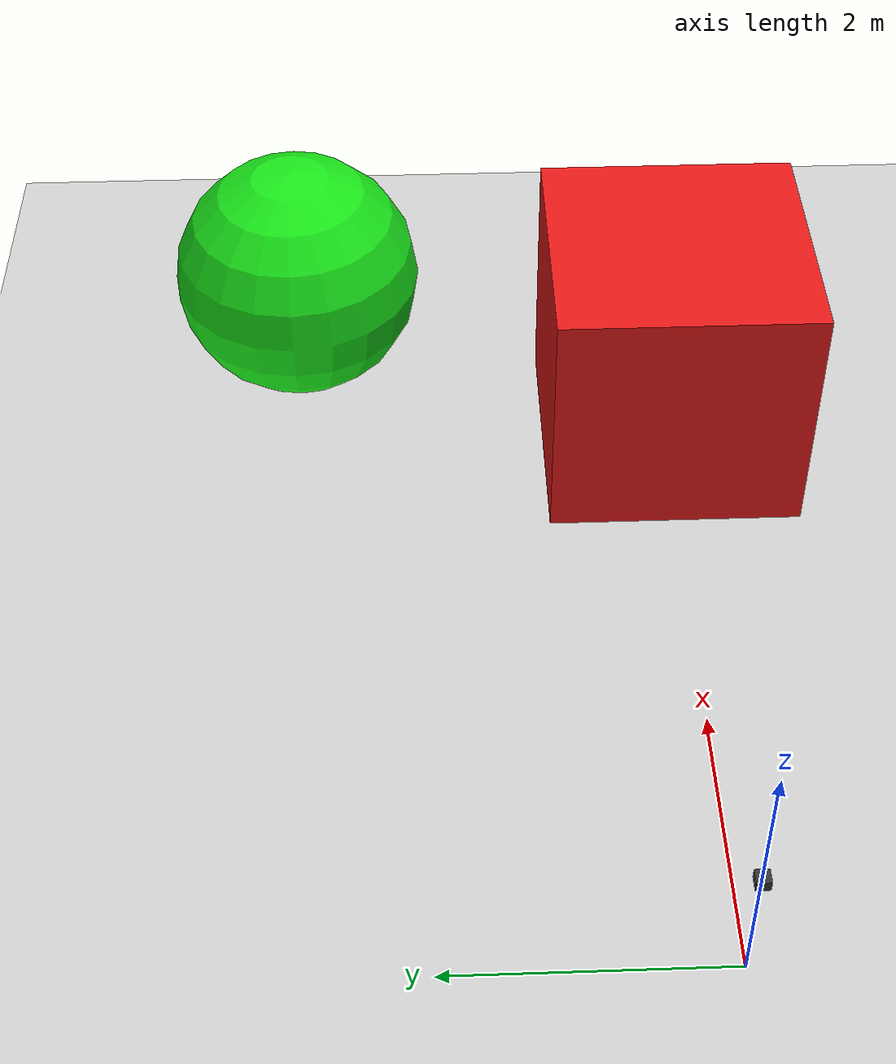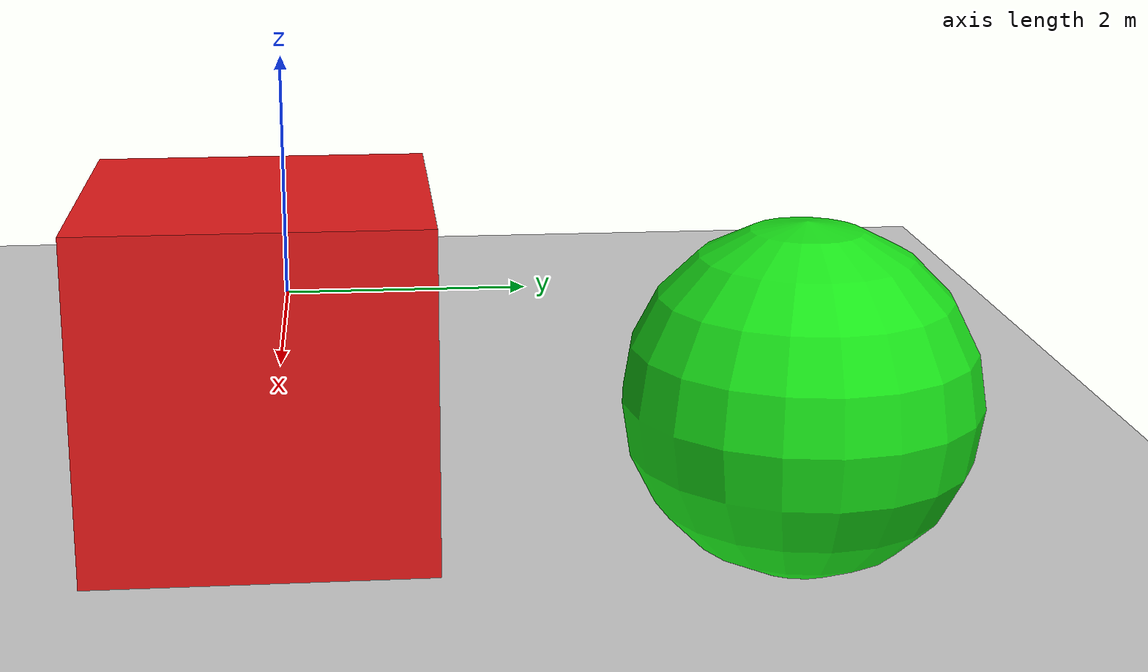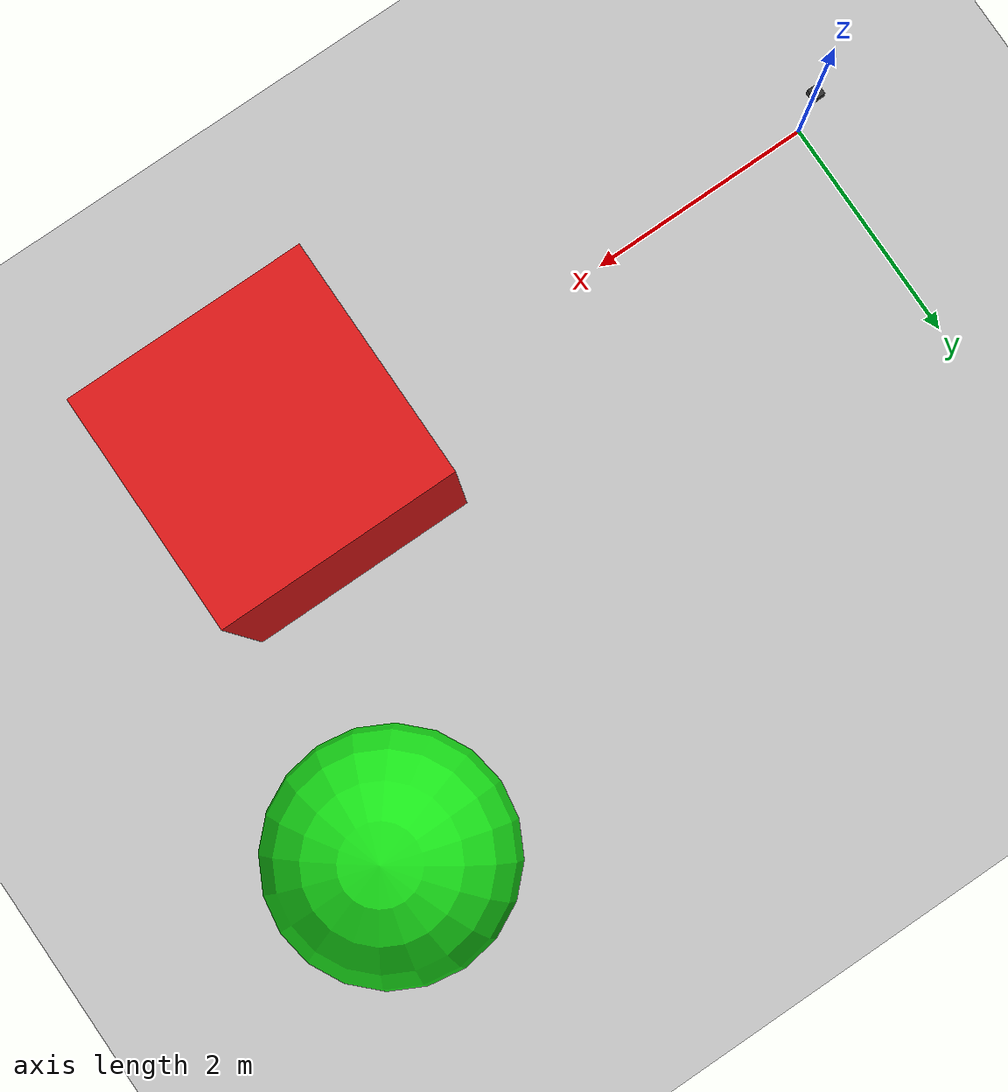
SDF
<?xml version="1.0" ?>
<sdf version="1.9">
  <world name="livox_avia">
    <gui fullscreen="0">

      <!-- 3D scene -->
      <plugin filename="MinimalScene" name="3D View">
        <gz-gui>
          <title>3D View</title>
          <property type="bool" key="showTitleBar">false</property>
          <property type="string" key="state">docked</property>
        </gz-gui>

        <engine>ogre2</engine>
        <scene>scene</scene>
        <ambient_light>0.4 0.4 0.4</ambient_light>
        <background_color>0.8 0.8 0.8</background_color>
        <camera_pose>-8 -6 6 0 0.45 0.6</camera_pose>
      </plugin>

      <!-- Plugins that add functionality to the scene -->
      <plugin filename="EntityContextMenuPlugin" name="Entity context menu">
        <gz-gui>
          <property key="state" type="string">floating</property>
          <property key="width" type="double">5</property>
          <property key="height" type="double">5</property>
          <property key="showTitleBar" type="bool">false</property>
        </gz-gui>
      </plugin>
      <plugin filename="GzSceneManager" name="Scene Manager">
        <gz-gui>
          <property key="resizable" type="bool">false</property>
          <property key="width" type="double">5</property>
          <property key="height" type="double">5</property>
          <property key="state" type="string">floating</property>
          <property key="showTitleBar" type="bool">false</property>
        </gz-gui>
      </plugin>
      <plugin filename="InteractiveViewControl" name="Interactive view control">
        <gz-gui>
          <property key="resizable" type="bool">false</property>
          <property key="width" type="double">5</property>
          <property key="height" type="double">5</property>
          <property key="state" type="string">floating</property>
          <property key="showTitleBar" type="bool">false</property>
        </gz-gui>
      </plugin>
      <plugin filename="CameraTracking" name="Camera Tracking">
        <gz-gui>
          <property key="resizable" type="bool">false</property>
          <property key="width" type="double">5</property>
          <property key="height" type="double">5</property>
          <property key="state" type="string">floating</property>
          <property key="showTitleBar" type="bool">false</property>
        </gz-gui>
      </plugin>
      <!-- World control -->
      <plugin filename="WorldControl" name="World control">
        <gz-gui>
          <title>World control</title>
          <property type="bool" key="showTitleBar">false</property>
          <property type="bool" key="resizable">false</property>
          <property type="double" key="height">72</property>
          <property type="double" key="z">1</property>

          <property type="string" key="state">floating</property>
          <anchors target="3D View">
            <line own="left" target="left"/>
            <line own="bottom" target="bottom"/>
          </anchors>
        </gz-gui>

        <play_pause>true</play_pause>
        <step>true</step>
        <start_paused>true</start_paused>
        <use_event>true</use_event>

      </plugin>

      <!-- World statistics -->
      <plugin filename="WorldStats" name="World stats">
        <gz-gui>
          <title>World stats</title>
          <property type="bool" key="showTitleBar">false</property>
          <property type="bool" key="resizable">false</property>
          <property type="double" key="height">110</property>
          <property type="double" key="width">290</property>
          <property type="double" key="z">1</property>

          <property type="string" key="state">floating</property>
          <anchors target="3D View">
            <line own="right" target="right"/>
            <line own="bottom" target="bottom"/>
          </anchors>
        </gz-gui>

        <sim_time>true</sim_time>
        <real_time>true</real_time>
        <real_time_factor>true</real_time_factor>
        <iterations>true</iterations>
      </plugin>

      <plugin filename="VisualizeLidar" name="Visualize Lidar">
      </plugin>

      <!-- Inspector -->
      <plugin filename="ComponentInspector" name="Component inspector">
        <gz-gui>
          <property type="string" key="state">docked</property>
        </gz-gui>
      </plugin>

      <!-- Entity tree -->
      <plugin filename="EntityTree" name="Entity tree">
        <gz-gui>
          <property type="string" key="state">docked</property>
        </gz-gui>
      </plugin>
    </gui>

    <physics name="1ms" type="ignored">
      <max_step_size>0.001</max_step_size>
      <real_time_factor>1.0</real_time_factor>
    </physics>
    <plugin filename="gz-sim-physics-system" name="gz::sim::systems::Physics"/>
    <plugin filename="gz-sim-sensors-system" name="gz::sim::systems::Sensors">
      <render_engine>ogre2</render_engine>
    </plugin>
    <plugin filename="gz-sim-scene-broadcaster-system" name="gz::sim::systems::SceneBroadcaster"/>

    <light type="directional" name="sun">
      <cast_shadows>true</cast_shadows>
      <pose>0 0 10 0 0 0</pose>
      <diffuse>0.8 0.8 0.8 1</diffuse>
      <specular>0.2 0.2 0.2 1</specular>
      <direction>-0.5 0.1 -0.9</direction>
    </light>

    <model name="ground_plane">
      <static>true</static>
      <link name="link">
        <collision name="collision">
          <geometry><plane><normal>0 0 1</normal><size>100 100</size></plane></geometry>
        </collision>
        <visual name="visual">
          <geometry><plane><normal>0 0 1</normal><size>100 100</size></plane></geometry>
          <material><ambient>0.8 0.8 0.8 1</ambient><diffuse>0.8 0.8 0.8 1</diffuse></material>
        </visual>
      </link>
    </model>

    <!-- 計測対象。箱と球を FOV 内に置いて点群の当たりを確認する -->
    <model name="target_box">
      <static>true</static>
      <pose>5 0 1 0 0 0</pose>
      <link name="link">
        <collision name="collision"><geometry><box><size>2 2 2</size></box></geometry></collision>
        <visual name="visual">
          <geometry><box><size>2 2 2</size></box></geometry>
          <material><ambient>0.8 0.1 0.1 1</ambient><diffuse>0.9 0.1 0.1 1</diffuse></material>
        </visual>
      </link>
    </model>

    <model name="target_sphere">
      <static>true</static>
      <pose>6 3 1 0 0 0</pose>
      <link name="link">
        <collision name="collision"><geometry><sphere><radius>1</radius></sphere></geometry></collision>
        <visual name="visual">
          <geometry><sphere><radius>1</radius></sphere></geometry>
          <material><ambient>0.1 0.7 0.1 1</ambient><diffuse>0.1 0.9 0.1 1</diffuse></material>
        </visual>
      </link>
    </model>

    <model name="livox_avia">
      <static>true</static>
      <pose>0 0 1 0 0 0</pose>
      <link name="link">
        <visual name="visual">
          <geometry><box><size>0.1 0.1 0.08</size></box></geometry>
          <material><ambient>0.2 0.2 0.2 1</ambient><diffuse>0.2 0.2 0.2 1</diffuse></material>
        </visual>
        <sensor name="avia" type="gpu_lidar">
          <pose>0 0 0 0 0 0</pose>
          <topic>livox/avia</topic>
          <update_rate>10</update_rate>
          <always_on>1</always_on>
          <visualize>true</visualize>
          <lidar>
            <scan>
              <!-- 200 x 120 = 24000 点/スキャン。Avia の samples 24000 に合わせた -->
              <horizontal>
                <samples>200</samples>
                <resolution>1</resolution>
                <min_angle>-0.61436</min_angle>
                <max_angle>0.61436</max_angle>
              </horizontal>
              <vertical>
                <samples>120</samples>
                <resolution>1</resolution>
                <min_angle>-0.67370</min_angle>
                <max_angle>0.67370</max_angle>
              </vertical>
            </scan>
            <range>
              <min>0.1</min>
              <max>200.0</max>
              <resolution>0.01</resolution>
            </range>
          </lidar>
        </sensor>
      </link>
    </model>
  </world>
</sdf>
